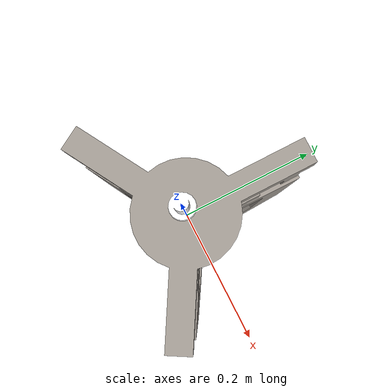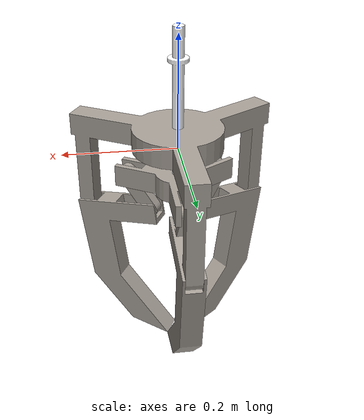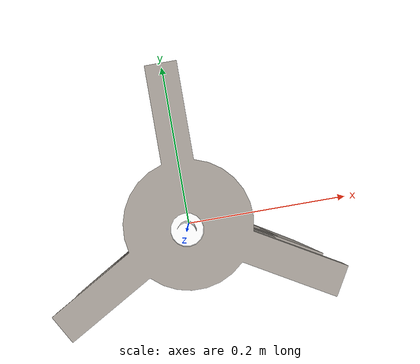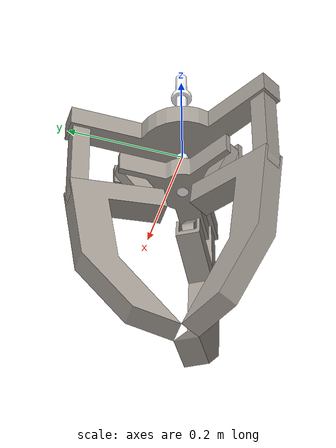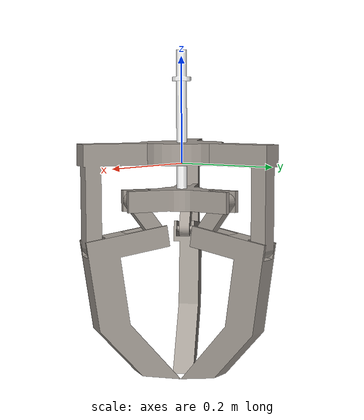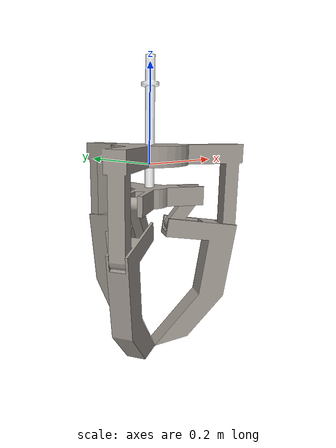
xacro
<?xml version="1.0" encoding="utf-8"?>

<robot
  name="claw">

  <link name="world"/>

  <link
    name="base_link">
    <inertial>
      <origin
        xyz="-1.57328618926919E-16 1.27659406015648E-16 -0.00380475448480049"
        rpy="0 0 0" />
      <mass
        value="14.2315320588481" />
      <inertia
        ixx="0.147608042754936"
        ixy="4.93667272888974E-16"
        ixz="-6.23719916937828E-17"
        iyy="0.147608042754937"
        iyz="1.15095319316312E-17"
        izz="0.226294089634963" />
    </inertial>
    <visual>
      <origin
        xyz="0 0 0"
        rpy="0 0 0" />
      <geometry>
        <mesh
          filename="package://robots/meshes/claw/base_link.STL" />
      </geometry>
      <material
        name="">
        <color
          rgba="0.647058823529412 0.619607843137255 0.588235294117647 1" />
      </material>
    </visual>
    <collision>
      <origin
        xyz="0 0 0"
        rpy="0 0 0" />
      <geometry>
        <mesh
          filename="package://robots/meshes/claw/base_link.STL" />
      </geometry>
    </collision>
  </link>

  <joint name="fixed" type="fixed">
	<parent link="world"/>
	<child link="base_link"/>
  </joint>

  <link
    name="finger_a">
    <inertial>
      <origin
        xyz="0.05746 -0.11113 5.3429E-16"
        rpy="0 0 0" />
      <mass
        value="5.838" />
      <inertia
        ixx="0.040951"
        ixy="0.0091749"
        ixz="-1.3878E-17"
        iyy="0.010201"
        iyz="6.6163E-17"
        izz="0.049499" />
    </inertial>
    <visual>
      <origin
        xyz="0 0 0"
        rpy="0 0 0" />
      <geometry>
        <mesh
          filename="package://robots/meshes/claw/finger_a.STL" />
      </geometry>
      <material
        name="">
        <color
          rgba="0.64706 0.61961 0.58824 1" />
      </material>
    </visual>
    <collision>
      <origin
        xyz="0 0 0"
        rpy="0 0 0" />
      <geometry>
        <mesh
          filename="package://robots/meshes/claw/finger_a.STL" />
      </geometry>
    </collision>
  </link>

  <joint
    name="finger_a_joint"
    type="revolute">
    <origin
      xyz="-0.15588 -0.09 -0.15"
      rpy="1.5708 0.01598 0.5236" />
    <parent
      link="base_link" />
    <child
      link="finger_a" />
    <axis
      xyz="0 0 1" />
    <limit
      lower="-1.5708"
      upper="0.15"
      effort="30"
      velocity="1" />
    <mimic
      joint="rod_joint"
      multiplier="9.28356454545"
      offset="0" />
  </joint>

  <link
    name="finger_b">
    <inertial>
      <origin
        xyz="0.05746 -0.11113 -2.4286E-15"
        rpy="0 0 0" />
      <mass
        value="5.838" />
      <inertia
        ixx="0.040951"
        ixy="0.0091749"
        ixz="-3.4694E-18"
        iyy="0.010201"
        iyz="1.4908E-17"
        izz="0.049499" />
    </inertial>
    <visual>
      <origin
        xyz="0 0 0"
        rpy="0 0 0" />
      <geometry>
        <mesh
          filename="package://robots/meshes/claw/finger_b.STL" />
      </geometry>
      <material
        name="">
        <color
          rgba="0.64706 0.61961 0.58824 1" />
      </material>
    </visual>
    <collision>
      <origin
        xyz="0 0 0"
        rpy="0 0 0" />
      <geometry>
        <mesh
          filename="package://robots/meshes/claw/finger_b.STL" />
      </geometry>
    </collision>
  </link>

  <joint
    name="finger_b_joint"
    type="revolute">
    <origin
      xyz="0.15588 -0.09 -0.15"
      rpy="1.5708 0.01598 2.618" />
    <parent
      link="base_link" />
    <child
      link="finger_b" />
    <axis
      xyz="0 0 1" />
    <limit
      lower="-1.5708"
      upper="0.15"
      effort="30"
      velocity="1" />
    <mimic
      joint="rod_joint"
      multiplier="9.28356454545"
      offset="0" />
  </joint>

  <link
    name="finger_c">
    <inertial>
      <origin
        xyz="0.05746 -0.11113 -7.0719E-18"
        rpy="0 0 0" />
      <mass
        value="5.838" />
      <inertia
        ixx="0.040951"
        ixy="0.0091749"
        ixz="-3.6834E-19"
        iyy="0.010201"
        iyz="-2.2745E-19"
        izz="0.049499" />
    </inertial>
    <visual>
      <origin
        xyz="0 0 0"
        rpy="0 0 0" />
      <geometry>
        <mesh
          filename="package://robots/meshes/claw/finger_c.STL" />
      </geometry>
      <material
        name="">
        <color
          rgba="0.64706 0.61961 0.58824 1" />
      </material>
    </visual>
    <collision>
      <origin
        xyz="0 0 0"
        rpy="0 0 0" />
      <geometry>
        <mesh
          filename="package://robots/meshes/claw/finger_c.STL" />
      </geometry>
    </collision>
  </link>

  <joint
    name="finger_c_joint"
    type="revolute">
    <origin
      xyz="0 0.18 -0.15"
      rpy="1.5708 0.01598 -1.5708" />
    <parent
      link="base_link" />
    <child
      link="finger_c" />
    <axis
      xyz="0 0 1" />
    <limit
      lower="-1.5708"
      upper="0.15"
      effort="30"
      velocity="1" />
    <mimic
      joint="rod_joint"
      multiplier="9.28356454545"
      offset="0" />
  </joint>

  <link
    name="rod">
    <inertial>
      <origin
        xyz="0 0 0"
        rpy="0 0 0" />
      <mass
        value="0" />
      <inertia
        ixx="0"
        ixy="0"
        ixz="0"
        iyy="0"
        iyz="0"
        izz="0" />
    </inertial>
    <visual>
      <origin
        xyz="0 0 0"
        rpy="0 0 0" />
      <geometry>
        <mesh
          filename="package://robots/meshes/claw/rod.STL" />
      </geometry>
      <material
        name="">
        <color
          rgba="1 1 1 1" />
      </material>
    </visual>
    <collision>
      <origin
        xyz="0 0 0"
        rpy="0 0 0" />
      <geometry>
        <mesh
          filename="package://robots/meshes/claw/rod.STL" />
      </geometry>
    </collision>
  </link>

  <joint
    name="rod_joint"
    type="prismatic">
    <origin
      xyz="0 0 0"
      rpy="1.5708 0 0" />
    <parent
      link="base_link" />
    <child
      link="rod" />
    <axis
      xyz="0 1 0" />
    <limit
      lower="0.00"
      upper="-0.11"
      effort="30"
      velocity="1" />
  </joint>

  <link
    name="moving_base">
    <inertial>
      <origin
        xyz="1.0298E-15 0.041745 -5.0073E-16"
        rpy="0 0 0" />
      <mass
        value="3.4745" />
      <inertia
        ixx="0.0067165"
        ixy="2.931E-19"
        ixz="3.1841E-17"
        iyy="0.012516"
        iyz="2.2166E-19"
        izz="0.0067165" />
    </inertial>
    <visual>
      <origin
        xyz="0 0 0"
        rpy="0 0 0" />
      <geometry>
        <mesh
          filename="package://robots/meshes/claw/moving_base.STL" />
      </geometry>
      <material
        name="">
        <color
          rgba="0.64706 0.61961 0.58824 1" />
      </material>
    </visual>
    <collision>
      <origin
        xyz="0 0 0"
        rpy="0 0 0" />
      <geometry>
        <mesh
          filename="package://robots/meshes/claw/moving_base.STL" />
      </geometry>
    </collision>
  </link>

  <joint
    name="moving_base_joint"
    type="fixed">
    <origin
      xyz="0 -0.109328458561404 0"
      rpy="0 0 0" />
    <parent
      link="rod" />
    <child
      link="moving_base" />
    <axis
      xyz="0 0 0" />
  </joint>

  <link
    name="finger_a_support">
    <inertial>
      <origin
        xyz="0.015913 0.031888 0.020735"
        rpy="0 0 0" />
      <mass
        value="0.46607" />
      <inertia
        ixx="0.00032347"
        ixy="-0.00015408"
        ixz="-6.6582E-05"
        iyy="0.00018484"
        iyz="-8.8957E-05"
        izz="0.00040036" />
    </inertial>
    <visual>
      <origin
        xyz="0 0 0"
        rpy="0 0 0" />
      <geometry>
        <mesh
          filename="package://robots/meshes/claw/finger_a_support.STL" />
      </geometry>
      <material
        name="">
        <color
          rgba="0.64706 0.61961 0.58824 1" />
      </material>
    </visual>
    <collision>
      <origin
        xyz="0 0 0"
        rpy="0 0 0" />
      <geometry>
        <mesh
          filename="package://robots/meshes/claw/finger_a_support.STL" />
      </geometry>
    </collision>
  </link>

  <joint
    name="finger_a_support_joint"
    type="revolute">
    <origin
      xyz="-0.081292 0.041745 0.058481"
      rpy="3.1416 0 0" />
    <parent
      link="moving_base" />
    <child
      link="finger_a_support" />
    <axis
      xyz="0.5 0 -0.86603" />
    <limit
      lower="-6.14"
      upper="3.14"
      effort="30"
      velocity="1" />
    <mimic
      joint="rod_joint"
      multiplier="12"
      offset="0" />
  </joint>

  <link
    name="finger_b_support">
    <inertial>
      <origin
        xyz="0.025913 0.031888 -0.0034141"
        rpy="0 0 0" />
      <mass
        value="0.46607" />
      <inertia
        ixx="0.00032347"
        ixy="-0.00015408"
        ixz="6.6582E-05"
        iyy="0.00018484"
        iyz="8.8957E-05"
        izz="0.00040036" />
    </inertial>
    <visual>
      <origin
        xyz="0 0 0"
        rpy="0 0 0" />
      <geometry>
        <mesh
          filename="package://robots/meshes/claw/finger_b_support.STL" />
      </geometry>
      <material
        name="">
        <color
          rgba="0.64706 0.61961 0.58824 1" />
      </material>
    </visual>
    <collision>
      <origin
        xyz="0 0 0"
        rpy="0 0 0" />
      <geometry>
        <mesh
          filename="package://robots/meshes/claw/finger_b_support.STL" />
      </geometry>
    </collision>
  </link>

  <joint
    name="finger_b_support_joint"
    type="revolute">
    <origin
      xyz="0.091292 0.041745 0.04116"
      rpy="0 0 -3.1416" />
    <parent
      link="moving_base" />
    <child
      link="finger_b_support" />
    <axis
      xyz="-0.5 0 -0.86603" />
	<limit
      lower="-6.14"
      upper="6.14"
      effort="30"
      velocity="1" />
      <mimic
      joint="rod_joint"
      multiplier="12"
      offset="0" />
  </joint>

  <link
    name="finger_c_support">
    <inertial>
      <origin
        xyz="0.01 -0.031888 0.024149"
        rpy="0 0 0" />
      <mass
        value="0.46607" />
      <inertia
        ixx="0.0004388"
        ixy="-4.1141E-19"
        ixz="3.1913E-19"
        iyy="0.00018484"
        iyz="0.00017791"
        izz="0.00028503" />
    </inertial>
    <visual>
      <origin
        xyz="0 0 0"
        rpy="0 0 0" />
      <geometry>
        <mesh
          filename="package://robots/meshes/claw/finger_c_support.STL" />
      </geometry>
      <material
        name="">
        <color
          rgba="0.64706 0.61961 0.58824 1" />
      </material>
    </visual>
    <collision>
      <origin
        xyz="0 0 0"
        rpy="0 0 0" />
      <geometry>
        <mesh
          filename="package://robots/meshes/claw/finger_c_support.STL" />
      </geometry>
    </collision>
  </link>

  <joint
    name="finger_c_support_joint"
    type="revolute">
    <origin
      xyz="-0.01 0.041745 -0.099641"
      rpy="0 0 0" />
    <parent
      link="moving_base" />
    <child
      link="finger_c_support" />
    <axis
      xyz="-1 0 0" />
    <limit
      lower="-6.14"
      upper="6.14"
      effort="30"
      velocity="1" />
      <mimic
      joint="rod_joint"
      multiplier="12"
      offset="0" />
  </joint>

</robot>
